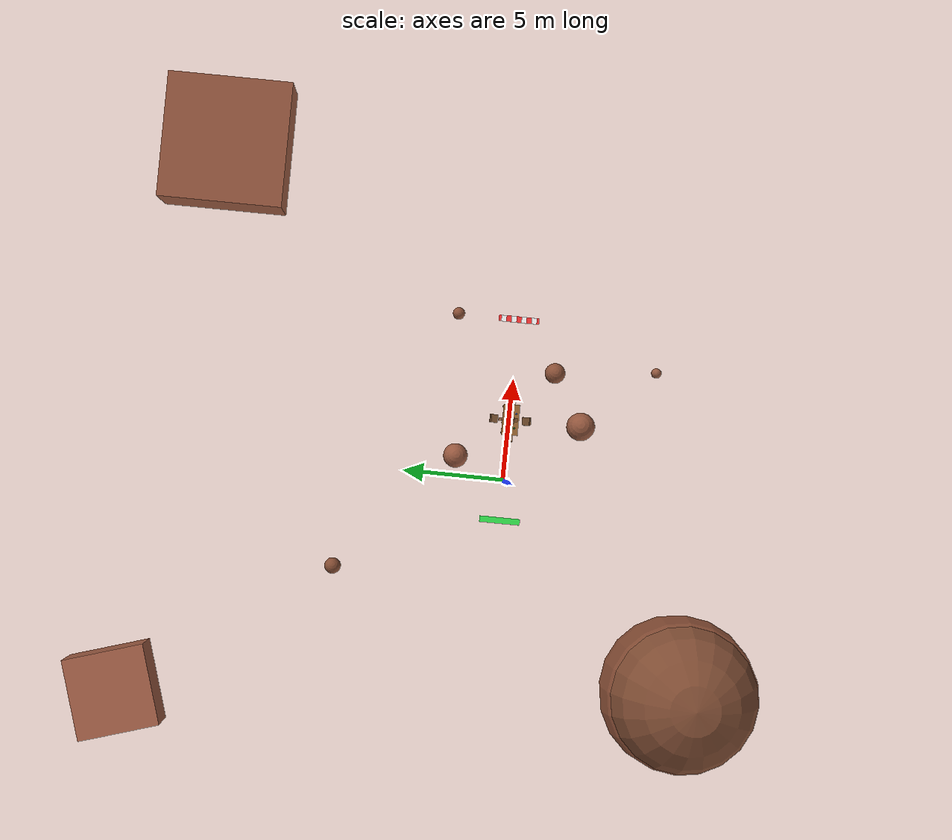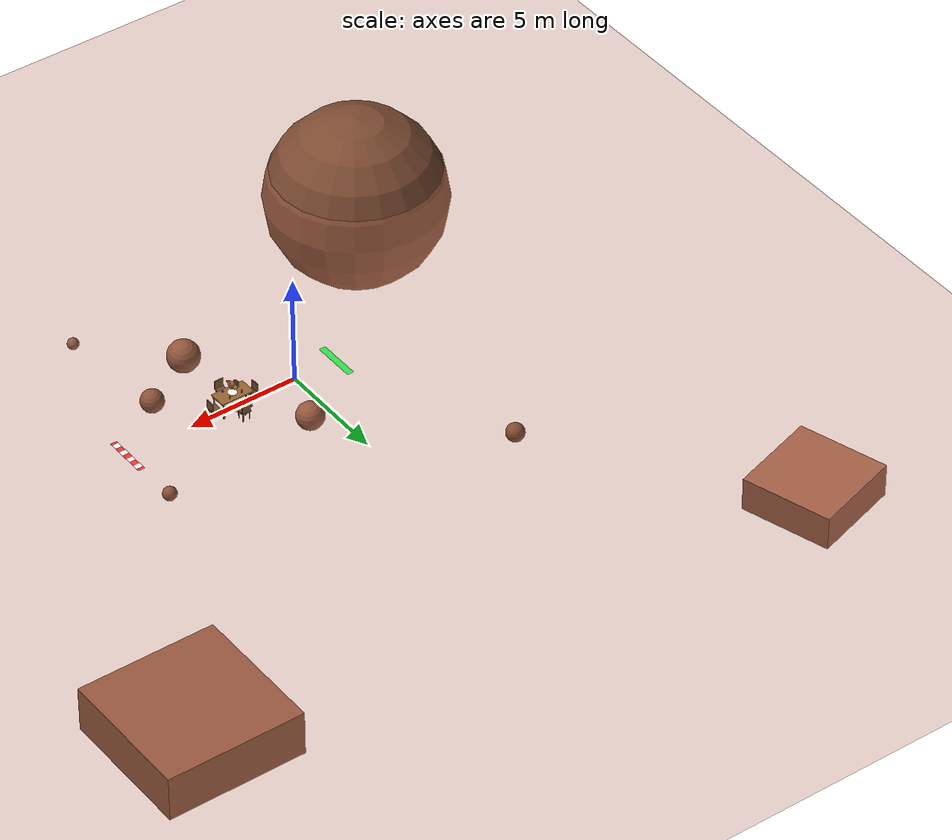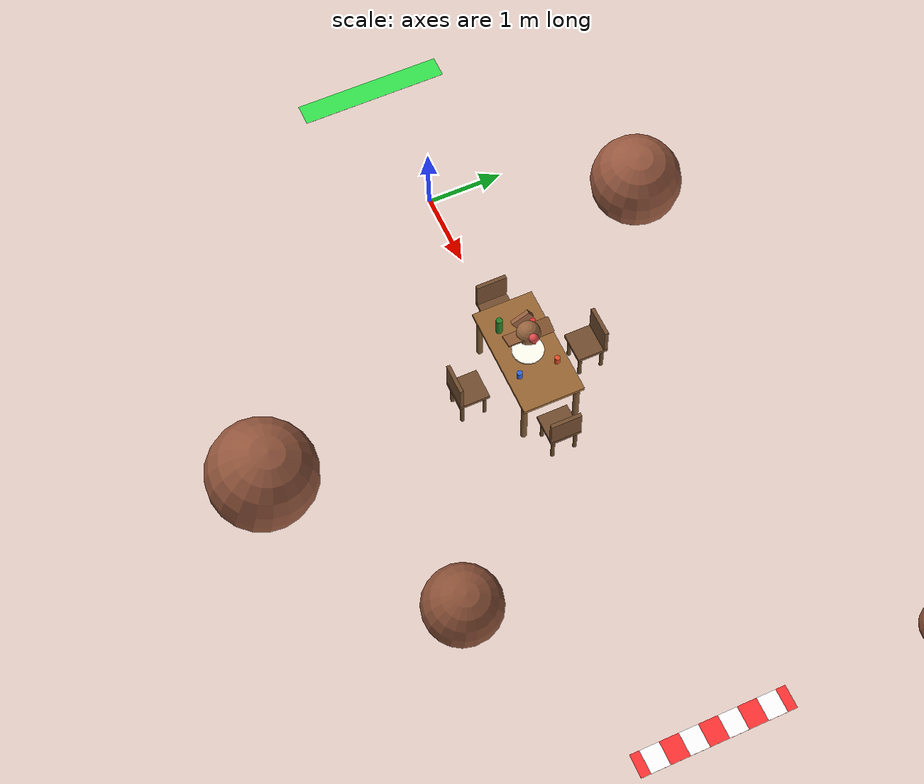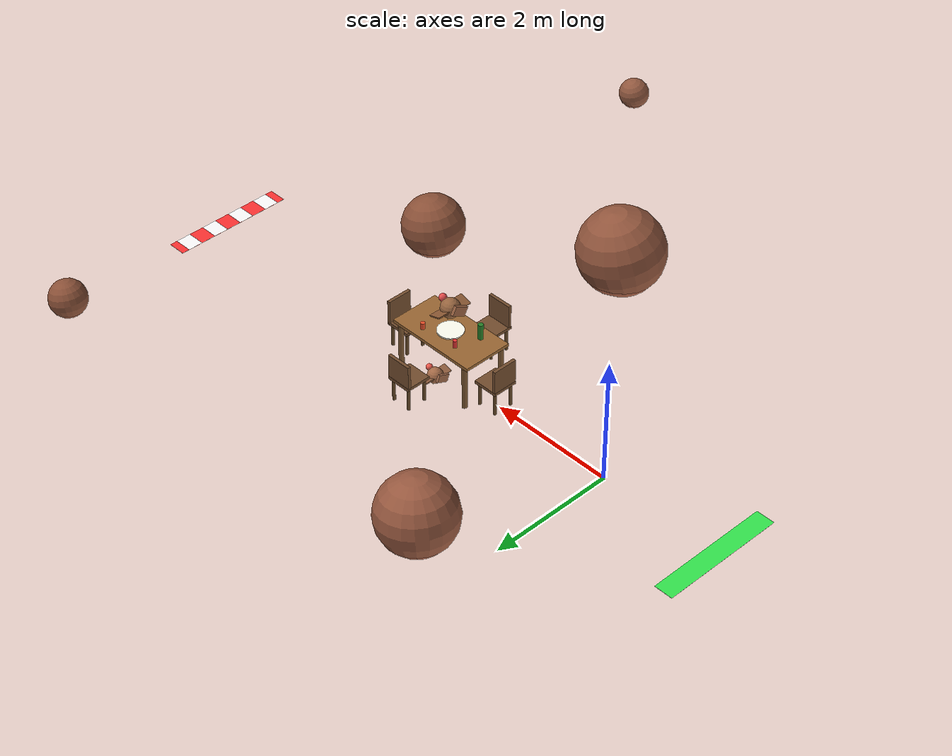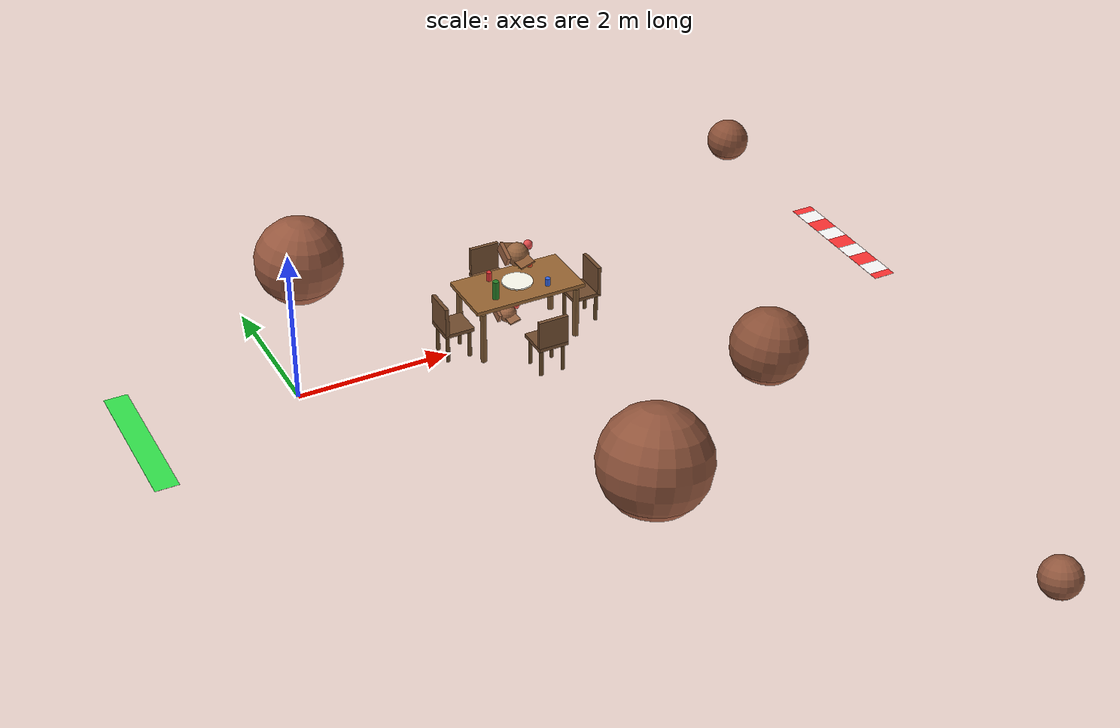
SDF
This XML file does not appear to have any style information associated with it. The document tree is shown below.
<!-- Mars Thanksgiving World - CS498GC Assignment 4 -->
<!--
 Mars gravity + Table with food + 2 Flying Turkeys (as dynamic models)
-->
<sdf version="1.6">
<world name="mars_thanksgiving">
<!-- Required Gazebo Harmonic system plugins -->
<plugin filename="gz-sim-physics-system" name="gz::sim::systems::Physics"/>
<plugin filename="gz-sim-user-commands-system" name="gz::sim::systems::UserCommands"/>
<plugin filename="gz-sim-scene-broadcaster-system" name="gz::sim::systems::SceneBroadcaster"/>
<!-- Mars Sun (dimmer, more distant) -->
<light name="mars_sun" type="directional">
<cast_shadows>1</cast_shadows>
<pose>0 0 50 0 0 0</pose>
<diffuse>0.9 0.7 0.5 1</diffuse>
<specular>0.2 0.15 0.1 1</specular>
<attenuation>
<range>1000</range>
<constant>0.9</constant>
<linear>0.01</linear>
<quadratic>0.001</quadratic>
</attenuation>
<direction>-0.5 0.5 -1</direction>
</light>
<!-- Physics with Mars gravity -->
<physics type="ode">
<max_step_size>0.001</max_step_size>
<real_time_factor>1.0</real_time_factor>
<real_time_update_rate>1000</real_time_update_rate>
<ode>
<solver>
<type>quick</type>
<iters>100</iters>
<sor>1.0</sor>
</solver>
<constraints>
<cfm>0.0</cfm>
<erp>0.2</erp>
<contact_max_correcting_vel>100.0</contact_max_correcting_vel>
<contact_surface_layer>0.001</contact_surface_layer>
</constraints>
</ode>
</physics>
<!-- Set Mars gravity separately -->
<gravity>0 0 -3.711</gravity>
<!-- Mars-like sky colors -->
<scene>
<ambient>0.8 0.6 0.4 1</ambient>
<background>0.9 0.6 0.4 1</background>
<shadows>true</shadows>
</scene>
<!-- Mars ground plane (reddish-brown) -->
<model name="mars_ground">
<static>true</static>
<link name="link">
<collision name="collision">
<geometry>
<plane>
<normal>0 0 1</normal>
<size>200 200</size>
</plane>
</geometry>
<surface>
<friction>
<ode>
<mu>0.8</mu>
<mu2>0.8</mu2>
</ode>
</friction>
</surface>
</collision>
<visual name="visual">
<cast_shadows>false</cast_shadows>
<geometry>
<plane>
<normal>0 0 1</normal>
<size>200 200</size>
</plane>
</geometry>
<material>
<ambient>0.6 0.3 0.2 1</ambient>
<diffuse>0.7 0.4 0.3 1</diffuse>
</material>
</visual>
</link>
</model>
<!-- Mars terrain: Hill 1 -->
<model name="mars_hill_1">
<static>true</static>
<pose>15 15 1 0 0 0</pose>
<link name="link">
<collision name="collision">
<geometry>
<box>
<size>6 6 2</size>
</box>
</geometry>
</collision>
<visual name="visual">
<geometry>
<box>
<size>6 6 2</size>
</box>
</geometry>
<material>
<ambient>0.5 0.25 0.15 1</ambient>
<diffuse>0.6 0.35 0.25 1</diffuse>
</material>
</visual>
</link>
</model>
<!-- Mars terrain: Hill 2 -->
<model name="mars_hill_2">
<static>true</static>
<pose>-12 18 0.75 0 0 0.3</pose>
<link name="link">
<collision name="collision">
<geometry>
<box>
<size>4 4 1.5</size>
</box>
</geometry>
</collision>
<visual name="visual">
<geometry>
<box>
<size>4 4 1.5</size>
</box>
</geometry>
<material>
<ambient>0.55 0.28 0.18 1</ambient>
<diffuse>0.65 0.38 0.28 1</diffuse>
</material>
</visual>
</link>
</model>
<!-- Mars crater -->
<model name="mars_crater_1">
<static>true</static>
<pose>-10 -10 -1.5 0 0 0</pose>
<link name="link">
<collision name="collision">
<geometry>
<sphere>
<radius>4</radius>
</sphere>
</geometry>
</collision>
<visual name="visual">
<geometry>
<sphere>
<radius>4</radius>
</sphere>
</geometry>
<material>
<ambient>0.4 0.2 0.15 1</ambient>
<diffuse>0.5 0.3 0.2 1</diffuse>
</material>
</visual>
</link>
</model>
<!-- THANKSGIVING TABLE AREA -->
<!-- Main Thanksgiving Table -->
<model name="thanksgiving_table">
<static>true</static>
<pose>3 0 0 0 0 0</pose>
<link name="table_top">
<pose>0 0 0.75 0 0 0</pose>
<collision name="collision">
<geometry>
<box>
<size>1.5 0.8 0.05</size>
</box>
</geometry>
</collision>
<visual name="visual">
<geometry>
<box>
<size>1.5 0.8 0.05</size>
</box>
</geometry>
<material>
<ambient>0.4 0.25 0.1 1</ambient>
<diffuse>0.6 0.4 0.2 1</diffuse>
</material>
</visual>
</link>
<link name="leg_1">
<pose>0.65 0.35 0.35 0 0 0</pose>
<collision name="collision">
<geometry>
<cylinder>
<radius>0.04</radius>
<length>0.7</length>
</cylinder>
</geometry>
</collision>
<visual name="visual">
<geometry>
<cylinder>
<radius>0.04</radius>
<length>0.7</length>
</cylinder>
</geometry>
<material>
<ambient>0.35 0.2 0.1 1</ambient>
<diffuse>0.5 0.35 0.2 1</diffuse>
</material>
</visual>
</link>
<link name="leg_2">
<pose>-0.65 0.35 0.35 0 0 0</pose>
<collision name="collision">
<geometry>
<cylinder>
<radius>0.04</radius>
<length>0.7</length>
</cylinder>
</geometry>
</collision>
<visual name="visual">
<geometry>
<cylinder>
<radius>0.04</radius>
<length>0.7</length>
</cylinder>
</geometry>
<material>
<ambient>0.35 0.2 0.1 1</ambient>
<diffuse>0.5 0.35 0.2 1</diffuse>
</material>
</visual>
</link>
<link name="leg_3">
<pose>0.65 -0.35 0.35 0 0 0</pose>
<collision name="collision">
<geometry>
<cylinder>
<radius>0.04</radius>
<length>0.7</length>
</cylinder>
</geometry>
</collision>
<visual name="visual">
<geometry>
<cylinder>
<radius>0.04</radius>
<length>0.7</length>
</cylinder>
</geometry>
<material>
<ambient>0.35 0.2 0.1 1</ambient>
<diffuse>0.5 0.35 0.2 1</diffuse>
</material>
</visual>
</link>
<link name="leg_4">
<pose>-0.65 -0.35 0.35 0 0 0</pose>
<collision name="collision">
<geometry>
<cylinder>
<radius>0.04</radius>
<length>0.7</length>
</cylinder>
</geometry>
</collision>
<visual name="visual">
<geometry>
<cylinder>
<radius>0.04</radius>
<length>0.7</length>
</cylinder>
</geometry>
<material>
<ambient>0.35 0.2 0.1 1</ambient>
<diffuse>0.5 0.35 0.2 1</diffuse>
</material>
</visual>
</link>
</model>
<!-- Plate (large dish) -->
<model name="plate_main">
<static>true</static>
<pose>3 0 0.8 0 0 0</pose>
<link name="link">
<collision name="collision">
<geometry>
<cylinder>
<radius>0.2</radius>
<length>0.02</length>
</cylinder>
</geometry>
</collision>
<visual name="visual">
<geometry>
<cylinder>
<radius>0.2</radius>
<length>0.02</length>
</cylinder>
</geometry>
<material>
<ambient>0.9 0.9 0.85 1</ambient>
<diffuse>1 1 0.95 1</diffuse>
</material>
</visual>
</link>
</model>
<!-- Cup 1 (red) -->
<model name="cup_red">
<static>false</static>
<pose>3.3 0.25 0.85 0 0 0</pose>
<link name="link">
<inertial>
<mass>0.1</mass>
</inertial>
<collision name="collision">
<geometry>
<cylinder>
<radius>0.035</radius>
<length>0.1</length>
</cylinder>
</geometry>
</collision>
<visual name="visual">
<geometry>
<cylinder>
<radius>0.035</radius>
<length>0.1</length>
</cylinder>
</geometry>
<material>
<ambient>0.8 0.2 0.1 1</ambient>
<diffuse>0.9 0.3 0.15 1</diffuse>
</material>
</visual>
</link>
</model>
<!-- Cup 2 (blue) -->
<model name="cup_blue">
<static>false</static>
<pose>3.3 -0.25 0.85 0 0 0</pose>
<link name="link">
<inertial>
<mass>0.1</mass>
</inertial>
<collision name="collision">
<geometry>
<cylinder>
<radius>0.035</radius>
<length>0.1</length>
</cylinder>
</geometry>
</collision>
<visual name="visual">
<geometry>
<cylinder>
<radius>0.035</radius>
<length>0.1</length>
</cylinder>
</geometry>
<material>
<ambient>0.1 0.3 0.8 1</ambient>
<diffuse>0.2 0.4 0.9 1</diffuse>
</material>
</visual>
</link>
</model>
<!-- Soda Can -->
<model name="soda_can">
<static>false</static>
<pose>2.7 0.2 0.85 0 0 0</pose>
<link name="link">
<inertial>
<mass>0.35</mass>
</inertial>
<collision name="collision">
<geometry>
<cylinder>
<radius>0.033</radius>
<length>0.12</length>
</cylinder>
</geometry>
</collision>
<visual name="visual">
<geometry>
<cylinder>
<radius>0.033</radius>
<length>0.12</length>
</cylinder>
</geometry>
<material>
<ambient>0.8 0.1 0.1 1</ambient>
<diffuse>0.9 0.2 0.2 1</diffuse>
</material>
</visual>
</link>
</model>
<!-- Bottle -->
<model name="bottle">
<static>false</static>
<pose>2.6 -0.2 0.9 0 0 0</pose>
<link name="link">
<inertial>
<mass>0.5</mass>
</inertial>
<collision name="collision">
<geometry>
<cylinder>
<radius>0.04</radius>
<length>0.25</length>
</cylinder>
</geometry>
</collision>
<visual name="visual">
<geometry>
<cylinder>
<radius>0.04</radius>
<length>0.25</length>
</cylinder>
</geometry>
<material>
<ambient>0.1 0.4 0.1 1</ambient>
<diffuse>0.15 0.5 0.15 1</diffuse>
</material>
</visual>
</link>
</model>
<!-- 4 CHAIRS AROUND TABLE   -->
<!-- Chair 1 (front, facing table) -->
<model name="chair_1">
<static>true</static>
<pose>3 0.8 0 0 0 0</pose>
<link name="seat">
<pose>0 0 0.4 0 0 0</pose>
<collision name="collision">
<geometry>
<box>
<size>0.4 0.4 0.05</size>
</box>
</geometry>
</collision>
<visual name="visual">
<geometry>
<box>
<size>0.4 0.4 0.05</size>
</box>
</geometry>
<material>
<ambient>0.3 0.2 0.1 1</ambient>
<diffuse>0.45 0.3 0.18 1</diffuse>
</material>
</visual>
</link>
<link name="back">
<pose>0 0.17 0.6 0 0 0</pose>
<collision name="collision">
<geometry>
<box>
<size>0.4 0.05 0.4</size>
</box>
</geometry>
</collision>
<visual name="visual">
<geometry>
<box>
<size>0.4 0.05 0.4</size>
</box>
</geometry>
<material>
<ambient>0.3 0.2 0.1 1</ambient>
<diffuse>0.45 0.3 0.18 1</diffuse>
</material>
</visual>
</link>
<link name="leg1">
<pose>0.15 0.15 0.2 0 0 0</pose>
<visual name="visual">
<geometry>
<cylinder>
<radius>0.025</radius>
<length>0.4</length>
</cylinder>
</geometry>
<material>
<ambient>0.28 0.18 0.08 1</ambient>
<diffuse>0.4 0.28 0.15 1</diffuse>
</material>
</visual>
</link>
<link name="leg2">
<pose>-0.15 0.15 0.2 0 0 0</pose>
<visual name="visual">
<geometry>
<cylinder>
<radius>0.025</radius>
<length>0.4</length>
</cylinder>
</geometry>
<material>
<ambient>0.28 0.18 0.08 1</ambient>
<diffuse>0.4 0.28 0.15 1</diffuse>
</material>
</visual>
</link>
<link name="leg3">
<pose>0.15 -0.15 0.2 0 0 0</pose>
<visual name="visual">
<geometry>
<cylinder>
<radius>0.025</radius>
<length>0.4</length>
</cylinder>
</geometry>
<material>
<ambient>0.28 0.18 0.08 1</ambient>
<diffuse>0.4 0.28 0.15 1</diffuse>
</material>
</visual>
</link>
<link name="leg4">
<pose>-0.15 -0.15 0.2 0 0 0</pose>
<visual name="visual">
<geometry>
<cylinder>
<radius>0.025</radius>
<length>0.4</length>
</cylinder>
</geometry>
<material>
<ambient>0.28 0.18 0.08 1</ambient>
<diffuse>0.4 0.28 0.15 1</diffuse>
</material>
</visual>
</link>
</model>
<!-- Chair 2 (back, facing table) -->
<model name="chair_2">
<static>true</static>
<pose>3 -0.8 0 0 0 3.14159</pose>
<link name="seat">
<pose>0 0 0.4 0 0 0</pose>
<collision name="collision">
<geometry>
<box>
<size>0.4 0.4 0.05</size>
</box>
</geometry>
</collision>
<visual name="visual">
<geometry>
<box>
<size>0.4 0.4 0.05</size>
</box>
</geometry>
<material>
<ambient>0.3 0.2 0.1 1</ambient>
<diffuse>0.45 0.3 0.18 1</diffuse>
</material>
</visual>
</link>
<link name="back">
<pose>0 0.17 0.6 0 0 0</pose>
<collision name="collision">
<geometry>
<box>
<size>0.4 0.05 0.4</size>
</box>
</geometry>
</collision>
<visual name="visual">
<geometry>
<box>
<size>0.4 0.05 0.4</size>
</box>
</geometry>
<material>
<ambient>0.3 0.2 0.1 1</ambient>
<diffuse>0.45 0.3 0.18 1</diffuse>
</material>
</visual>
</link>
<link name="leg1">
<pose>0.15 0.15 0.2 0 0 0</pose>
<visual name="visual">
<geometry>
<cylinder>
<radius>0.025</radius>
<length>0.4</length>
</cylinder>
</geometry>
<material>
<ambient>0.28 0.18 0.08 1</ambient>
<diffuse>0.4 0.28 0.15 1</diffuse>
</material>
</visual>
</link>
<link name="leg2">
<pose>-0.15 0.15 0.2 0 0 0</pose>
<visual name="visual">
<geometry>
<cylinder>
<radius>0.025</radius>
<length>0.4</length>
</cylinder>
</geometry>
<material>
<ambient>0.28 0.18 0.08 1</ambient>
<diffuse>0.4 0.28 0.15 1</diffuse>
</material>
</visual>
</link>
<link name="leg3">
<pose>0.15 -0.15 0.2 0 0 0</pose>
<visual name="visual">
<geometry>
<cylinder>
<radius>0.025</radius>
<length>0.4</length>
</cylinder>
</geometry>
<material>
<ambient>0.28 0.18 0.08 1</ambient>
<diffuse>0.4 0.28 0.15 1</diffuse>
</material>
</visual>
</link>
<link name="leg4">
<pose>-0.15 -0.15 0.2 0 0 0</pose>
<visual name="visual">
<geometry>
<cylinder>
<radius>0.025</radius>
<length>0.4</length>
</cylinder>
</geometry>
<material>
<ambient>0.28 0.18 0.08 1</ambient>
<diffuse>0.4 0.28 0.15 1</diffuse>
</material>
</visual>
</link>
</model>
<!-- Chair 3 (left end of table) -->
<model name="chair_3">
<static>true</static>
<pose>3.9 0 0 0 0 -1.5708</pose>
<link name="seat">
<pose>0 0 0.4 0 0 0</pose>
<collision name="collision">
<geometry>
<box>
<size>0.4 0.4 0.05</size>
</box>
</geometry>
</collision>
<visual name="visual">
<geometry>
<box>
<size>0.4 0.4 0.05</size>
</box>
</geometry>
<material>
<ambient>0.3 0.2 0.1 1</ambient>
<diffuse>0.45 0.3 0.18 1</diffuse>
</material>
</visual>
</link>
<link name="back">
<pose>0 0.17 0.6 0 0 0</pose>
<collision name="collision">
<geometry>
<box>
<size>0.4 0.05 0.4</size>
</box>
</geometry>
</collision>
<visual name="visual">
<geometry>
<box>
<size>0.4 0.05 0.4</size>
</box>
</geometry>
<material>
<ambient>0.3 0.2 0.1 1</ambient>
<diffuse>0.45 0.3 0.18 1</diffuse>
</material>
</visual>
</link>
<link name="leg1">
<pose>0.15 0.15 0.2 0 0 0</pose>
<visual name="visual">
<geometry>
<cylinder>
<radius>0.025</radius>
<length>0.4</length>
</cylinder>
</geometry>
<material>
<ambient>0.28 0.18 0.08 1</ambient>
<diffuse>0.4 0.28 0.15 1</diffuse>
</material>
</visual>
</link>
<link name="leg2">
<pose>-0.15 0.15 0.2 0 0 0</pose>
<visual name="visual">
<geometry>
<cylinder>
<radius>0.025</radius>
<length>0.4</length>
</cylinder>
</geometry>
<material>
<ambient>0.28 0.18 0.08 1</ambient>
<diffuse>0.4 0.28 0.15 1</diffuse>
</material>
</visual>
</link>
<link name="leg3">
<pose>0.15 -0.15 0.2 0 0 0</pose>
<visual name="visual">
<geometry>
<cylinder>
<radius>0.025</radius>
<length>0.4</length>
</cylinder>
</geometry>
<material>
<ambient>0.28 0.18 0.08 1</ambient>
<diffuse>0.4 0.28 0.15 1</diffuse>
</material>
</visual>
</link>
<link name="leg4">
<pose>-0.15 -0.15 0.2 0 0 0</pose>
<visual name="visual">
<geometry>
<cylinder>
<radius>0.025</radius>
<length>0.4</length>
</cylinder>
</geometry>
<material>
<ambient>0.28 0.18 0.08 1</ambient>
<diffuse>0.4 0.28 0.15 1</diffuse>
</material>
</visual>
</link>
</model>
<!-- Chair 4 (right end of table) -->
<model name="chair_4">
<static>true</static>
<pose>2.1 0 0 0 0 1.5708</pose>
<link name="seat">
<pose>0 0 0.4 0 0 0</pose>
<collision name="collision">
<geometry>
<box>
<size>0.4 0.4 0.05</size>
</box>
</geometry>
</collision>
<visual name="visual">
<geometry>
<box>
<size>0.4 0.4 0.05</size>
</box>
</geometry>
<material>
<ambient>0.3 0.2 0.1 1</ambient>
<diffuse>0.45 0.3 0.18 1</diffuse>
</material>
</visual>
</link>
<link name="back">
<pose>0 0.17 0.6 0 0 0</pose>
<collision name="collision">
<geometry>
<box>
<size>0.4 0.05 0.4</size>
</box>
</geometry>
</collision>
<visual name="visual">
<geometry>
<box>
<size>0.4 0.05 0.4</size>
</box>
</geometry>
<material>
<ambient>0.3 0.2 0.1 1</ambient>
<diffuse>0.45 0.3 0.18 1</diffuse>
</material>
</visual>
</link>
<link name="leg1">
<pose>0.15 0.15 0.2 0 0 0</pose>
<visual name="visual">
<geometry>
<cylinder>
<radius>0.025</radius>
<length>0.4</length>
</cylinder>
</geometry>
<material>
<ambient>0.28 0.18 0.08 1</ambient>
<diffuse>0.4 0.28 0.15 1</diffuse>
</material>
</visual>
</link>
<link name="leg2">
<pose>-0.15 0.15 0.2 0 0 0</pose>
<visual name="visual">
<geometry>
<cylinder>
<radius>0.025</radius>
<length>0.4</length>
</cylinder>
</geometry>
<material>
<ambient>0.28 0.18 0.08 1</ambient>
<diffuse>0.4 0.28 0.15 1</diffuse>
</material>
</visual>
</link>
<link name="leg3">
<pose>0.15 -0.15 0.2 0 0 0</pose>
<visual name="visual">
<geometry>
<cylinder>
<radius>0.025</radius>
<length>0.4</length>
</cylinder>
</geometry>
<material>
<ambient>0.28 0.18 0.08 1</ambient>
<diffuse>0.4 0.28 0.15 1</diffuse>
</material>
</visual>
</link>
<link name="leg4">
<pose>-0.15 -0.15 0.2 0 0 0</pose>
<visual name="visual">
<geometry>
<cylinder>
<radius>0.025</radius>
<length>0.4</length>
</cylinder>
</geometry>
<material>
<ambient>0.28 0.18 0.08 1</ambient>
<diffuse>0.4 0.28 0.15 1</diffuse>
</material>
</visual>
</link>
</model>
<!-- FLYING TURKEY 1 - ABOVE TABLE     -->
<!-- Hovers statically above the table -->
<model name="flying_turkey_1">
<static>true</static>
<pose>3 0 1.2 0 0 0</pose>
<link name="body">
<inertial>
<mass>3.0</mass>
<inertia>
<ixx>0.02</ixx>
<iyy>0.02</iyy>
<izz>0.02</izz>
<ixy>0</ixy>
<ixz>0</ixz>
<iyz>0</iyz>
</inertia>
</inertial>
<!-- Main body (brown sphere) -->
<visual name="body_visual">
<pose>0 0 0 0 0 0</pose>
<geometry>
<sphere>
<radius>0.15</radius>
</sphere>
</geometry>
<material>
<ambient>0.5 0.3 0.2 1</ambient>
<diffuse>0.6 0.4 0.25 1</diffuse>
</material>
</visual>
<!-- Head (red sphere) -->
<visual name="head_visual">
<pose>0.15 0 0.1 0 0 0</pose>
<geometry>
<sphere>
<radius>0.06</radius>
</sphere>
</geometry>
<material>
<ambient>0.8 0.2 0.2 1</ambient>
<diffuse>0.9 0.3 0.3 1</diffuse>
</material>
</visual>
<!-- Wattle -->
<visual name="wattle_visual">
<pose>0.18 0 0.05 0 0 0</pose>
<geometry>
<cylinder>
<radius>0.015</radius>
<length>0.04</length>
</cylinder>
</geometry>
<material>
<ambient>0.9 0.1 0.1 1</ambient>
<diffuse>1.0 0.2 0.2 1</diffuse>
</material>
</visual>
<!-- Left wing -->
<visual name="wing_left_visual">
<pose>0 0.15 0 0 0.3 0</pose>
<geometry>
<box>
<size>0.2 0.3 0.02</size>
</box>
</geometry>
<material>
<ambient>0.45 0.25 0.15 1</ambient>
<diffuse>0.55 0.35 0.2 1</diffuse>
</material>
</visual>
<!-- Right wing -->
<visual name="wing_right_visual">
<pose>0 -0.15 0 0 -0.3 0</pose>
<geometry>
<box>
<size>0.2 0.3 0.02</size>
</box>
</geometry>
<material>
<ambient>0.45 0.25 0.15 1</ambient>
<diffuse>0.55 0.35 0.2 1</diffuse>
</material>
</visual>
<!-- Tail feathers -->
<visual name="tail_visual">
<pose>-0.18 0 0.05 0.5 0 0</pose>
<geometry>
<box>
<size>0.05 0.25 0.15</size>
</box>
</geometry>
<material>
<ambient>0.5 0.28 0.18 1</ambient>
<diffuse>0.6 0.38 0.25 1</diffuse>
</material>
</visual>
<!-- Legs -->
<visual name="leg_left">
<pose>0 0.05 -0.12 0 0 0</pose>
<geometry>
<cylinder>
<radius>0.01</radius>
<length>0.1</length>
</cylinder>
</geometry>
<material>
<ambient>0.8 0.6 0.2 1</ambient>
<diffuse>0.9 0.7 0.3 1</diffuse>
</material>
</visual>
<visual name="leg_right">
<pose>0 -0.05 -0.12 0 0 0</pose>
<geometry>
<cylinder>
<radius>0.01</radius>
<length>0.1</length>
</cylinder>
</geometry>
<material>
<ambient>0.8 0.6 0.2 1</ambient>
<diffuse>0.9 0.7 0.3 1</diffuse>
</material>
</visual>
<!-- Collision -->
<collision name="collision">
<geometry>
<sphere>
<radius>0.2</radius>
</sphere>
</geometry>
</collision>
</link>
</model>
<!-- RUNNING TURKEY 2 - UNDER TABLE   -->
<!-- Runs in circles under the table  -->
<!-- Uses TrajectoryFollower plugin   -->
<model name="flying_turkey_2">
<static>false</static>
<pose>3 0.3 0.15 0 0 0</pose>
<link name="body">
<inertial>
<mass>2.5</mass>
<inertia>
<ixx>0.015</ixx>
<iyy>0.015</iyy>
<izz>0.015</izz>
<ixy>0</ixy>
<ixz>0</ixz>
<iyz>0</iyz>
</inertia>
</inertial>
<!-- Main body -->
<visual name="body_visual">
<geometry>
<sphere>
<radius>0.12</radius>
</sphere>
</geometry>
<material>
<ambient>0.55 0.35 0.22 1</ambient>
<diffuse>0.65 0.42 0.28 1</diffuse>
</material>
</visual>
<!-- Head -->
<visual name="head_visual">
<pose>0.12 0 0.08 0 0 0</pose>
<geometry>
<sphere>
<radius>0.05</radius>
</sphere>
</geometry>
<material>
<ambient>0.85 0.25 0.2 1</ambient>
<diffuse>0.95 0.35 0.3 1</diffuse>
</material>
</visual>
<!-- Wattle -->
<visual name="wattle_visual">
<pose>0.14 0 0.04 0 0 0</pose>
<geometry>
<cylinder>
<radius>0.012</radius>
<length>0.03</length>
</cylinder>
</geometry>
<material>
<ambient>0.95 0.15 0.15 1</ambient>
<diffuse>1.0 0.25 0.25 1</diffuse>
</material>
</visual>
<!-- Left wing -->
<visual name="wing_left_visual">
<pose>0 0.12 0 0 0.25 0</pose>
<geometry>
<box>
<size>0.15 0.25 0.02</size>
</box>
</geometry>
<material>
<ambient>0.48 0.28 0.18 1</ambient>
<diffuse>0.58 0.38 0.25 1</diffuse>
</material>
</visual>
<!-- Right wing -->
<visual name="wing_right_visual">
<pose>0 -0.12 0 0 -0.25 0</pose>
<geometry>
<box>
<size>0.15 0.25 0.02</size>
</box>
</geometry>
<material>
<ambient>0.48 0.28 0.18 1</ambient>
<diffuse>0.58 0.38 0.25 1</diffuse>
</material>
</visual>
<!-- Tail -->
<visual name="tail_visual">
<pose>-0.15 0 0.04 0.4 0 0</pose>
<geometry>
<box>
<size>0.04 0.2 0.12</size>
</box>
</geometry>
<material>
<ambient>0.52 0.3 0.2 1</ambient>
<diffuse>0.62 0.4 0.28 1</diffuse>
</material>
</visual>
<!-- Legs -->
<visual name="leg_left">
<pose>0 0.04 -0.1 0 0 0</pose>
<geometry>
<cylinder>
<radius>0.008</radius>
<length>0.08</length>
</cylinder>
</geometry>
<material>
<ambient>0.85 0.65 0.25 1</ambient>
<diffuse>0.95 0.75 0.35 1</diffuse>
</material>
</visual>
<visual name="leg_right">
<pose>0 -0.04 -0.1 0 0 0</pose>
<geometry>
<cylinder>
<radius>0.008</radius>
<length>0.08</length>
</cylinder>
</geometry>
<material>
<ambient>0.85 0.65 0.25 1</ambient>
<diffuse>0.95 0.75 0.35 1</diffuse>
</material>
</visual>
<!-- Collision -->
<collision name="collision">
<geometry>
<sphere>
<radius>0.15</radius>
</sphere>
</geometry>
</collision>
</link>
<!--
 VelocityControl plugin - makes turkey run in circles
-->
<!--
 Sets initial velocity: forward speed + angular rotation
-->
<plugin filename="gz-sim-velocity-control-system" name="gz::sim::systems::VelocityControl">
<initial_linear>0.3 0 0</initial_linear>
<initial_angular>0 0 0.5</initial_angular>
</plugin>
</model>
<!-- Mars rocks -->
<model name="rock_1">
<static>true</static>
<pose>8 3 0.15 0.1 0.2 0.5</pose>
<link name="link">
<collision name="collision">
<geometry>
<sphere>
<radius>0.3</radius>
</sphere>
</geometry>
</collision>
<visual name="visual">
<geometry>
<sphere>
<radius>0.3</radius>
</sphere>
</geometry>
<material>
<ambient>0.45 0.25 0.18 1</ambient>
<diffuse>0.55 0.32 0.22 1</diffuse>
</material>
</visual>
</link>
</model>
<model name="rock_2">
<static>true</static>
<pose>-5 8 0.2 0.3 0.1 1.2</pose>
<link name="link">
<collision name="collision">
<geometry>
<sphere>
<radius>0.4</radius>
</sphere>
</geometry>
</collision>
<visual name="visual">
<geometry>
<sphere>
<radius>0.4</radius>
</sphere>
</geometry>
<material>
<ambient>0.42 0.22 0.15 1</ambient>
<diffuse>0.52 0.3 0.2 1</diffuse>
</material>
</visual>
</link>
</model>
<model name="rock_3">
<static>true</static>
<pose>6 -7 0.12 0.2 0.15 2.1</pose>
<link name="link">
<collision name="collision">
<geometry>
<sphere>
<radius>0.25</radius>
</sphere>
</geometry>
</collision>
<visual name="visual">
<geometry>
<sphere>
<radius>0.25</radius>
</sphere>
</geometry>
<material>
<ambient>0.48 0.28 0.2 1</ambient>
<diffuse>0.58 0.35 0.25 1</diffuse>
</material>
</visual>
</link>
</model>
<!-- START/FINISH LINES      -->
<!-- Start Line (Green) - 5m before table -->
<model name="start_line">
<static>true</static>
<pose>-2 0 0.001 0 0 0</pose>
<link name="link">
<visual name="visual">
<geometry>
<box>
<size>0.3 2.0 0.002</size>
</box>
</geometry>
<material>
<ambient>0.1 0.8 0.2 1</ambient>
<diffuse>0.2 0.9 0.3 1</diffuse>
</material>
</visual>
<!-- Collision removed - visual marker only -->
</link>
</model>
<!--
 Finish Line (Checkered pattern - red/white alternating boxes) - 5m after table
-->
<model name="finish_line">
<static>true</static>
<pose>8 0 0.001 0 0 0</pose>
<link name="link">
<!-- Red base -->
<visual name="red_base">
<geometry>
<box>
<size>0.3 2.0 0.002</size>
</box>
</geometry>
<material>
<ambient>0.9 0.1 0.1 1</ambient>
<diffuse>1.0 0.2 0.2 1</diffuse>
</material>
</visual>
<!-- White stripes overlay -->
<visual name="white_stripe_1">
<pose>0 -0.75 0.001 0 0 0</pose>
<geometry>
<box>
<size>0.3 0.25 0.002</size>
</box>
</geometry>
<material>
<ambient>1 1 1 1</ambient>
<diffuse>1 1 1 1</diffuse>
</material>
</visual>
<visual name="white_stripe_2">
<pose>0 -0.25 0.001 0 0 0</pose>
<geometry>
<box>
<size>0.3 0.25 0.002</size>
</box>
</geometry>
<material>
<ambient>1 1 1 1</ambient>
<diffuse>1 1 1 1</diffuse>
</material>
</visual>
<visual name="white_stripe_3">
<pose>0 0.25 0.001 0 0 0</pose>
<geometry>
<box>
<size>0.3 0.25 0.002</size>
</box>
</geometry>
<material>
<ambient>1 1 1 1</ambient>
<diffuse>1 1 1 1</diffuse>
</material>
</visual>
<visual name="white_stripe_4">
<pose>0 0.75 0.001 0 0 0</pose>
<geometry>
<box>
<size>0.3 0.25 0.002</size>
</box>
</geometry>
<material>
<ambient>1 1 1 1</ambient>
<diffuse>1 1 1 1</diffuse>
</material>
</visual>
<!-- Collision removed - visual marker only -->
</link>
</model>
<!-- NAVIGATION BOULDERS     -->
<!-- Boulder 1: NW of table - between start and table -->
<model name="nav_boulder_1">
<static>true</static>
<pose>1 2.5 0.3 0.1 0.05 0.8</pose>
<link name="link">
<collision name="collision">
<geometry>
<sphere>
<radius>0.6</radius>
</sphere>
</geometry>
</collision>
<visual name="visual">
<geometry>
<sphere>
<radius>0.6</radius>
</sphere>
</geometry>
<material>
<ambient>0.5 0.28 0.18 1</ambient>
<diffuse>0.6 0.35 0.25 1</diffuse>
</material>
</visual>
</link>
</model>
<!--
 Boulder 2: SE of table - between table and finish
-->
<model name="nav_boulder_2">
<static>true</static>
<pose>5.5 -2 0.25 0.15 0.1 1.2</pose>
<link name="link">
<collision name="collision">
<geometry>
<sphere>
<radius>0.5</radius>
</sphere>
</geometry>
</collision>
<visual name="visual">
<geometry>
<sphere>
<radius>0.5</radius>
</sphere>
</geometry>
<material>
<ambient>0.45 0.25 0.15 1</ambient>
<diffuse>0.55 0.32 0.22 1</diffuse>
</material>
</visual>
</link>
</model>
<!-- Boulder 3: South of table -->
<model name="nav_boulder_3">
<static>true</static>
<pose>3 -3.5 0.35 0.2 0.08 2.0</pose>
<link name="link">
<collision name="collision">
<geometry>
<sphere>
<radius>0.7</radius>
</sphere>
</geometry>
</collision>
<visual name="visual">
<geometry>
<sphere>
<radius>0.7</radius>
</sphere>
</geometry>
<material>
<ambient>0.48 0.26 0.16 1</ambient>
<diffuse>0.58 0.34 0.24 1</diffuse>
</material>
</visual>
</link>
</model>
<!-- MARTIAN ROVER GUEST     -->
<!--
 Martian Rover sitting as a guest at the thanksgiving table
-->
<!--
 Source: https://github.com/theunknowninfinite/Modeling-and-Simulation-of-Martian-Rover
-->
</world>
</sdf>
